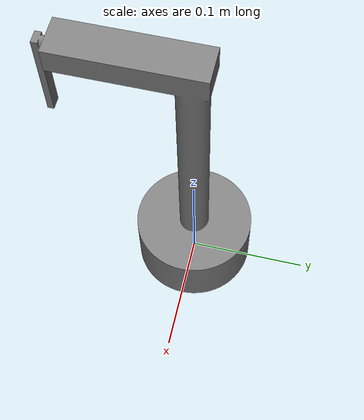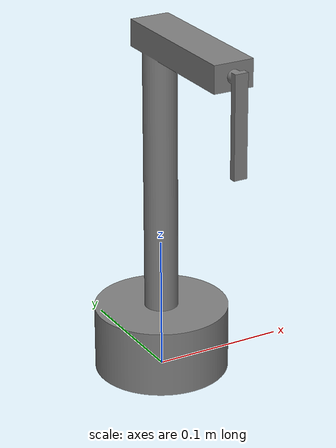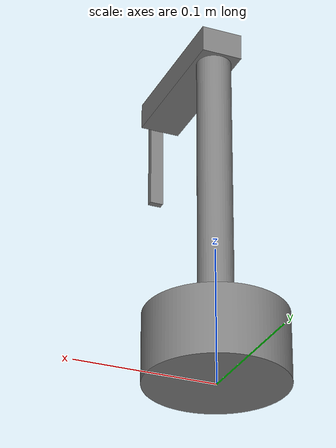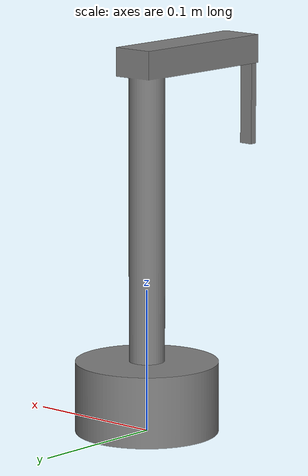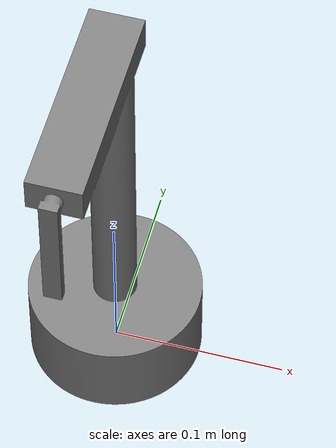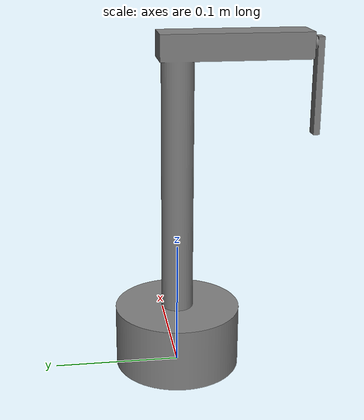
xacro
<?xml version="1.0"?>
<robot xmlns:xacro="http://www.ros.org/wiki/xacro" name="bot">
  <xacro:property name="package_name" value="wheatley" />
  <xacro:include filename="$(find ${package_name})/urdf/materials.xacro" />
  <xacro:include filename="$(find ${package_name})/urdf/gazebo.xacro" />
  <link name="base_link">
    <inertial>
      <origin xyz="1.7370069300e-17 5.7900231001e-18 2.5000000000e-02" rpy="0.0 0.0 0.0" />
      <mass value="3.0826877913e+00" />
      <inertia ixx="2.5689064928e-03" iyy="2.5689064928e-03" izz="3.8533597392e-03"
        ixy="2.8558133636e-18" iyz="4.4622083806e-19" ixz="6.2470917328e-19" />
    </inertial>
    <visual>
      <origin xyz="0.0000000000e+00 0.0000000000e+00 0.0000000000e+00" rpy="0.0 0.0 0.0" />
      <geometry>
        <mesh filename="package://${package_name}/meshes/base.stl"
          scale="0.001 0.001 0.001" />
      </geometry>
      <material name="default_material" />
    </visual>
    <collision>
      <origin xyz="0.0000000000e+00 0.0000000000e+00 0.0000000000e+00" rpy="0.0 0.0 0.0" />
      <geometry>
        <mesh filename="package://${package_name}/meshes/base_collision.stl"
          scale="0.001 0.001 0.001" />
      </geometry>
    </collision>
  </link>

  <link name="arm_link">
    <inertial>
      <origin xyz="1.7001195431e-18 -1.7541522519e-02 1.4540158770e-01" rpy="0.0 0.0 0.0" />
      <mass value="1.3123219478e+00" />
      <inertia ixx="7.6374268774e-03" iyy="6.5065599184e-03" izz="1.2723232048e-03"
        ixy="-3.9136964396e-20" iyz="1.4870635260e-03" ixz="7.8984630651e-20" />
    </inertial>
    <visual>
      <origin xyz="0.0000000000e+00 0.0000000000e+00 -5.0000000000e-02" rpy="0.0 0.0 0.0" />
      <geometry>
        <mesh filename="package://${package_name}/meshes/arm.stl" scale="0.001 0.001 0.001" />
      </geometry>
      <material name="default_material" />
    </visual>
    <collision>
      <origin xyz="0.0000000000e+00 0.0000000000e+00 -5.0000000000e-02" rpy="0.0 0.0 0.0" />
      <geometry>
        <mesh filename="package://${package_name}/meshes/arm_collision.stl"
          scale="0.001 0.001 0.001" />
      </geometry>
      <xacro:if value="${'default_material' in existing_contact_coefficients}">
        <xacro:insert_block name="default_material_contact_coefficients" />
      </xacro:if>

    </collision>
  </link>

  <joint name="arm_joint" type="continuous">
    <origin xyz="0.0000000000e+00 0.0000000000e+00 5.0000000000e-02" rpy="0.0 0.0 0.0" />
    <parent link="base_link" />
    <child link="arm_link" />
    <axis xyz="0.0 0.0 1.0" />
  </joint>

  <link name="spinner_link">
    <inertial>
      <origin xyz="0.0000000000e+00 -7.0260347622e-03 -2.9419222885e-02" rpy="0.0 0.0 0.0" />
      <mass value="3.2520188669e-02" />
      <inertia ixx="1.6903041667e-05" iyy="1.7030108827e-05" izz="4.0209146690e-07"
        ixy="-2.7017277304e-21" iyz="-4.5345139610e-07" ixz="2.7888802379e-21" />
    </inertial>
    <visual>
      <origin xyz="0.0000000000e+00 1.0000000000e-01 -2.6000000000e-01" rpy="0.0 0.0 0.0" />
      <geometry>
        <mesh filename="package://${package_name}/meshes/spinner.stl"
          scale="0.001 0.001 0.001" />
      </geometry>
      <material name="default_material" />
    </visual>
    <collision>
      <origin xyz="0.0000000000e+00 1.0000000000e-01 -2.6000000000e-01" rpy="0.0 0.0 0.0" />
      <geometry>
        <mesh filename="package://${package_name}/meshes/spinner_collision.stl"
          scale="0.001 0.001 0.001" />
      </geometry>
      <xacro:if value="${'default_material' in existing_contact_coefficients}">
        <xacro:insert_block name="default_material_contact_coefficients" />
      </xacro:if>

    </collision>
  </link>

  <joint name="spinner_joint" type="continuous">
    <origin xyz="0.0000000000e+00 -1.0000000000e-01 2.1000000000e-01" rpy="0.0 0.0 0.0" />
    <parent link="arm_link" />
    <child link="spinner_link" />
    <axis xyz="0.0 -1.0 0.0" />
  </joint>

</robot>

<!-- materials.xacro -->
<robot xmlns:xacro="http://www.ros.org/wiki/xacro" name="bot">
  <material name="default_material">
    <color rgba="0.5 0.5 0.5 1.0" />
  </material>
  <material name="arm_material">
    <color rgba="0.8 0.2 0.2 1.0" />
  </material>
  <material name="spinner_material">
    <color rgba="0.2 0.8 0.2 1.0" />
  </material>
  <xacro:property name="existing_contact_coefficients" value="[]" />
</robot>
